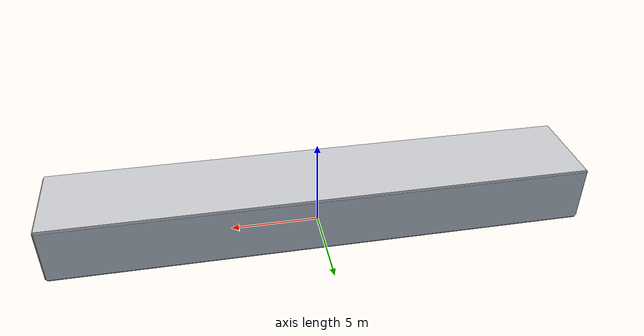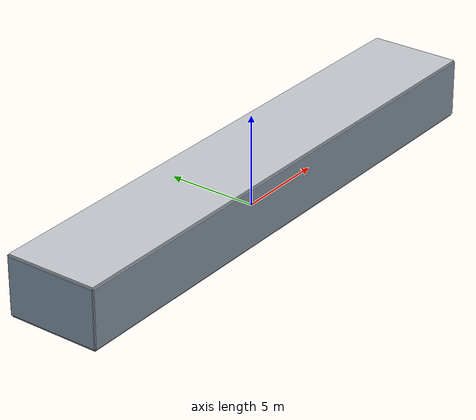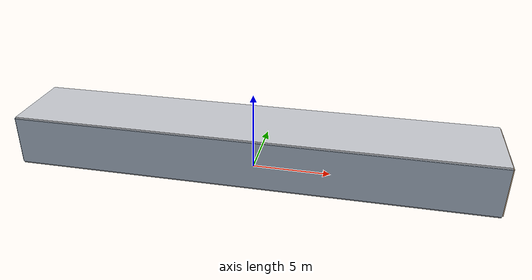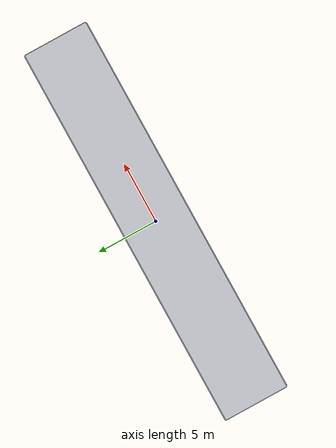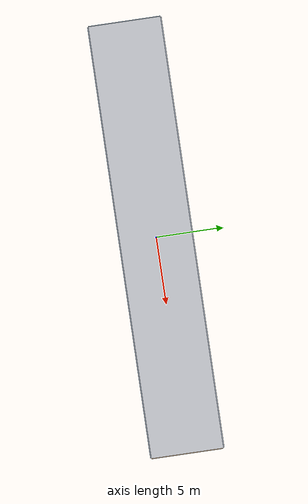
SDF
<?xml version="1.0"?>
<sdf version="1.10">
  <world name="xq_p3_long_corridor">
    <gravity>0 0 -9.80665</gravity>
    <physics name="xq_p3_400hz_physics" type="ode">
      <max_step_size>0.0025</max_step_size>
      <real_time_factor>1.0</real_time_factor>
      <real_time_update_rate>400</real_time_update_rate>
    </physics>

    <plugin filename="gz-sim-physics-system" name="gz::sim::systems::Physics"/>
    <plugin filename="gz-sim-user-commands-system" name="gz::sim::systems::UserCommands"/>
    <plugin filename="gz-sim-scene-broadcaster-system" name="gz::sim::systems::SceneBroadcaster"/>
    <plugin filename="gz-sim-sensors-system" name="gz::sim::systems::Sensors">
      <render_engine>ogre2</render_engine>
    </plugin>
    <plugin filename="gz-sim-imu-system" name="gz::sim::systems::Imu"/>

    <scene>
      <ambient>0.70 0.72 0.76</ambient>
      <background>0.16 0.18 0.22</background>
    </scene>
    <light name="xq_corridor_sun" type="directional">
      <pose>0 0 8 0 0 0</pose>
      <diffuse>0.9 0.9 0.86 1</diffuse>
      <direction>-0.3 0.2 -1</direction>
    </light>

    <model name="xq_corridor_shell">
      <static>true</static>
      <link name="xq_corridor_shell_link">
        <collision name="floor_c"><pose>0 0 -0.06 0 0 0</pose><geometry><box><size>30 5 0.12</size></box></geometry></collision>
        <visual name="floor_v"><pose>0 0 -0.06 0 0 0</pose><geometry><box><size>30 5 0.12</size></box></geometry><material><diffuse>0.42 0.44 0.48 1</diffuse></material></visual>
        <collision name="ceiling_c"><pose>0 0 3.15 0 0 0</pose><geometry><box><size>30 5 0.10</size></box></geometry></collision>
        <visual name="ceiling_v"><pose>0 0 3.15 0 0 0</pose><geometry><box><size>30 5 0.10</size></box></geometry><material><diffuse>0.76 0.77 0.79 1</diffuse></material></visual>
        <collision name="wall_n_c"><pose>0 2.5 1.55 0 0 0</pose><geometry><box><size>30 0.16 3.10</size></box></geometry></collision>
        <visual name="wall_n_v"><pose>0 2.5 1.55 0 0 0</pose><geometry><box><size>30 0.16 3.10</size></box></geometry><material><diffuse>0.64 0.68 0.73 1</diffuse></material></visual>
        <collision name="wall_s_c"><pose>0 -2.5 1.55 0 0 0</pose><geometry><box><size>30 0.16 3.10</size></box></geometry></collision>
        <visual name="wall_s_v"><pose>0 -2.5 1.55 0 0 0</pose><geometry><box><size>30 0.16 3.10</size></box></geometry><material><diffuse>0.58 0.63 0.69 1</diffuse></material></visual>
        <collision name="end_w_c"><pose>-15 0 1.55 0 0 0</pose><geometry><box><size>0.16 5 3.10</size></box></geometry></collision>
        <visual name="end_w_v"><pose>-15 0 1.55 0 0 0</pose><geometry><box><size>0.16 5 3.10</size></box></geometry><material><diffuse>0.50 0.58 0.65 1</diffuse></material></visual>
        <collision name="end_e_c"><pose>15 0 1.55 0 0 0</pose><geometry><box><size>0.16 5 3.10</size></box></geometry></collision>
        <visual name="end_e_v"><pose>15 0 1.55 0 0 0</pose><geometry><box><size>0.16 5 3.10</size></box></geometry><material><diffuse>0.63 0.53 0.42 1</diffuse></material></visual>

        <!-- Asymmetric recess markers prevent a perfectly featureless corridor. -->
        <collision name="pier_01_c"><pose>-9.0 2.18 1.0 0 0 0</pose><geometry><box><size>0.45 0.55 2.0</size></box></geometry></collision>
        <visual name="pier_01_v"><pose>-9.0 2.18 1.0 0 0 0</pose><geometry><box><size>0.45 0.55 2.0</size></box></geometry><material><diffuse>0.72 0.31 0.18 1</diffuse></material></visual>
        <collision name="pier_02_c"><pose>-4.0 -2.12 0.75 0 0 0</pose><geometry><box><size>0.60 0.65 1.5</size></box></geometry></collision>
        <visual name="pier_02_v"><pose>-4.0 -2.12 0.75 0 0 0</pose><geometry><box><size>0.60 0.65 1.5</size></box></geometry><material><diffuse>0.21 0.52 0.64 1</diffuse></material></visual>
        <collision name="pier_03_c"><pose>1.5 2.10 1.20 0 0 0</pose><geometry><box><size>0.35 0.70 2.4</size></box></geometry></collision>
        <visual name="pier_03_v"><pose>1.5 2.10 1.20 0 0 0</pose><geometry><box><size>0.35 0.70 2.4</size></box></geometry><material><diffuse>0.29 0.62 0.35 1</diffuse></material></visual>
        <collision name="pier_04_c"><pose>7.0 -2.15 0.90 0 0 0</pose><geometry><box><size>0.50 0.60 1.8</size></box></geometry></collision>
        <visual name="pier_04_v"><pose>7.0 -2.15 0.90 0 0 0</pose><geometry><box><size>0.50 0.60 1.8</size></box></geometry><material><diffuse>0.62 0.45 0.18 1</diffuse></material></visual>
        <collision name="crate_c"><pose>11.0 1.65 0.45 0 0 0.35</pose><geometry><box><size>1.0 0.8 0.9</size></box></geometry></collision>
        <visual name="crate_v"><pose>11.0 1.65 0.45 0 0 0.35</pose><geometry><box><size>1.0 0.8 0.9</size></box></geometry><material><diffuse>0.52 0.27 0.12 1</diffuse></material></visual>
      </link>
    </model>

    <include>
      <name>xq_agent_01</name>
      <uri>model://xq_iris_mid360</uri>
      <pose>-12 0 1.2 0 0 0</pose>
    </include>
  </world>
</sdf>

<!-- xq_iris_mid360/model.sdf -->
<sdf version="1.10">
  <model name="xq_iris_mid360" canonical_link="xq_base_link">
    <static>false</static>
    <self_collide>false</self_collide>
    <allow_auto_disable>false</allow_auto_disable>

    <link name="xq_base_link">
      <gravity>false</gravity>
      <inertial>
        <mass>1.40</mass>
        <inertia>
          <ixx>0.030</ixx>
          <ixy>0.0</ixy>
          <ixz>0.0</ixz>
          <iyy>0.030</iyy>
          <iyz>0.0</iyz>
          <izz>0.055</izz>
        </inertia>
      </inertial>

      <collision name="xq_body_collision">
        <geometry>
          <box>
            <size>0.30 0.22 0.10</size>
          </box>
        </geometry>
      </collision>
      <visual name="xq_body_visual">
        <geometry>
          <box>
            <size>0.30 0.22 0.10</size>
          </box>
        </geometry>
        <material>
          <ambient>0.035 0.045 0.060 1</ambient>
          <diffuse>0.055 0.075 0.100 1</diffuse>
          <specular>0.35 0.35 0.35 1</specular>
        </material>
      </visual>

      <collision name="xq_arm_ne_sw_collision">
        <pose>0 0 0.015 0 0 0.78539816339</pose>
        <geometry>
          <box>
            <size>0.66 0.035 0.028</size>
          </box>
        </geometry>
      </collision>
      <visual name="xq_arm_ne_sw_visual">
        <pose>0 0 0.015 0 0 0.78539816339</pose>
        <geometry>
          <box>
            <size>0.66 0.035 0.028</size>
          </box>
        </geometry>
        <material>
          <ambient>0.12 0.13 0.15 1</ambient>
          <diffuse>0.18 0.20 0.23 1</diffuse>
        </material>
      </visual>

      <collision name="xq_arm_nw_se_collision">
        <pose>0 0 0.015 0 0 -0.78539816339</pose>
        <geometry>
          <box>
            <size>0.66 0.035 0.028</size>
          </box>
        </geometry>
      </collision>
      <visual name="xq_arm_nw_se_visual">
        <pose>0 0 0.015 0 0 -0.78539816339</pose>
        <geometry>
          <box>
            <size>0.66 0.035 0.028</size>
          </box>
        </geometry>
        <material>
          <ambient>0.12 0.13 0.15 1</ambient>
          <diffuse>0.18 0.20 0.23 1</diffuse>
        </material>
      </visual>

      <visual name="xq_rotor_front_left_visual">
        <pose>0.235 0.235 0.045 0 0 0</pose>
        <geometry>
          <cylinder>
            <radius>0.105</radius>
            <length>0.008</length>
          </cylinder>
        </geometry>
        <transparency>0.35</transparency>
        <material>
          <ambient>0.08 0.55 0.78 1</ambient>
          <diffuse>0.08 0.55 0.78 1</diffuse>
        </material>
      </visual>
      <visual name="xq_rotor_front_right_visual">
        <pose>0.235 -0.235 0.045 0 0 0</pose>
        <geometry>
          <cylinder>
            <radius>0.105</radius>
            <length>0.008</length>
          </cylinder>
        </geometry>
        <transparency>0.35</transparency>
        <material>
          <ambient>0.08 0.55 0.78 1</ambient>
          <diffuse>0.08 0.55 0.78 1</diffuse>
        </material>
      </visual>
      <visual name="xq_rotor_rear_left_visual">
        <pose>-0.235 0.235 0.045 0 0 0</pose>
        <geometry>
          <cylinder>
            <radius>0.105</radius>
            <length>0.008</length>
          </cylinder>
        </geometry>
        <transparency>0.35</transparency>
        <material>
          <ambient>0.78 0.29 0.10 1</ambient>
          <diffuse>0.78 0.29 0.10 1</diffuse>
        </material>
      </visual>
      <visual name="xq_rotor_rear_right_visual">
        <pose>-0.235 -0.235 0.045 0 0 0</pose>
        <geometry>
          <cylinder>
            <radius>0.105</radius>
            <length>0.008</length>
          </cylinder>
        </geometry>
        <transparency>0.35</transparency>
        <material>
          <ambient>0.78 0.29 0.10 1</ambient>
          <diffuse>0.78 0.29 0.10 1</diffuse>
        </material>
      </visual>
    </link>

    <link name="xq_mid360_link">
      <pose relative_to="xq_base_link">0.04 0 0.135 0 0 0</pose>
      <gravity>false</gravity>
      <inertial>
        <mass>0.265</mass>
        <inertia>
          <ixx>0.00045</ixx>
          <ixy>0.0</ixy>
          <ixz>0.0</ixz>
          <iyy>0.00045</iyy>
          <iyz>0.0</iyz>
          <izz>0.00055</izz>
        </inertia>
      </inertial>
      <collision name="xq_mid360_collision">
        <geometry>
          <cylinder>
            <radius>0.040</radius>
            <length>0.065</length>
          </cylinder>
        </geometry>
      </collision>
      <visual name="xq_mid360_visual">
        <geometry>
          <cylinder>
            <radius>0.040</radius>
            <length>0.065</length>
          </cylinder>
        </geometry>
        <material>
          <ambient>0.02 0.02 0.025 1</ambient>
          <diffuse>0.035 0.035 0.045 1</diffuse>
          <specular>0.55 0.55 0.55 1</specular>
        </material>
      </visual>

      <!-- MID-360-like aggregate raster: 720 x 32 x 10 Hz ~= 230 kpoints/s. -->
      <sensor name="xq_mid360_lidar" type="gpu_lidar">
        <!-- Gazebo publishes LaserScan here and PointCloudPacked on /points. -->
        <topic>/xq/lidar</topic>
        <always_on>true</always_on>
        <update_rate>10</update_rate>
        <visualize>false</visualize>
        <lidar>
          <scan>
            <horizontal>
              <samples>720</samples>
              <resolution>1</resolution>
              <min_angle>-3.14159265359</min_angle>
              <max_angle>3.14159265359</max_angle>
            </horizontal>
            <vertical>
              <samples>32</samples>
              <resolution>1</resolution>
              <min_angle>-0.12217304764</min_angle>
              <max_angle>0.90757121104</max_angle>
            </vertical>
          </scan>
          <range>
            <min>0.10</min>
            <max>40.0</max>
            <resolution>0.02</resolution>
          </range>
          <noise>
            <type>gaussian</type>
            <mean>0.0</mean>
            <stddev>0.015</stddev>
          </noise>
        </lidar>
      </sensor>
    </link>

    <joint name="xq_mid360_joint" type="fixed">
      <parent>xq_base_link</parent>
      <child>xq_mid360_link</child>
    </joint>

    <link name="xq_imu_link">
      <pose relative_to="xq_base_link">0 0 0.015 0 0 0</pose>
      <gravity>false</gravity>
      <inertial>
        <mass>0.020</mass>
        <inertia>
          <ixx>0.00001</ixx>
          <ixy>0.0</ixy>
          <ixz>0.0</ixz>
          <iyy>0.00001</iyy>
          <iyz>0.0</iyz>
          <izz>0.00001</izz>
        </inertia>
      </inertial>
      <sensor name="xq_imu_sensor" type="imu">
        <topic>/xq/imu</topic>
        <always_on>true</always_on>
        <update_rate>200</update_rate>
        <imu>
          <angular_velocity>
            <x><noise type="gaussian"><mean>0</mean><stddev>0.00020</stddev></noise></x>
            <y><noise type="gaussian"><mean>0</mean><stddev>0.00020</stddev></noise></y>
            <z><noise type="gaussian"><mean>0</mean><stddev>0.00020</stddev></noise></z>
          </angular_velocity>
          <linear_acceleration>
            <x><noise type="gaussian"><mean>0</mean><stddev>0.0020</stddev></noise></x>
            <y><noise type="gaussian"><mean>0</mean><stddev>0.0020</stddev></noise></y>
            <z><noise type="gaussian"><mean>0</mean><stddev>0.0020</stddev></noise></z>
          </linear_acceleration>
        </imu>
      </sensor>
    </link>

    <joint name="xq_imu_joint" type="fixed">
      <parent>xq_base_link</parent>
      <child>xq_imu_link</child>
    </joint>

    <plugin filename="gz-sim-velocity-control-system"
            name="gz::sim::systems::VelocityControl">
      <initial_linear>0 0 0</initial_linear>
      <initial_angular>0 0 0</initial_angular>
    </plugin>

    <plugin filename="gz-sim-odometry-publisher-system"
            name="gz::sim::systems::OdometryPublisher">
      <dimensions>3</dimensions>
      <odom_publish_frequency>50</odom_publish_frequency>
      <odom_frame>xq_world</odom_frame>
      <robot_base_frame>xq_base_link</robot_base_frame>
    </plugin>
  </model>
</sdf>
